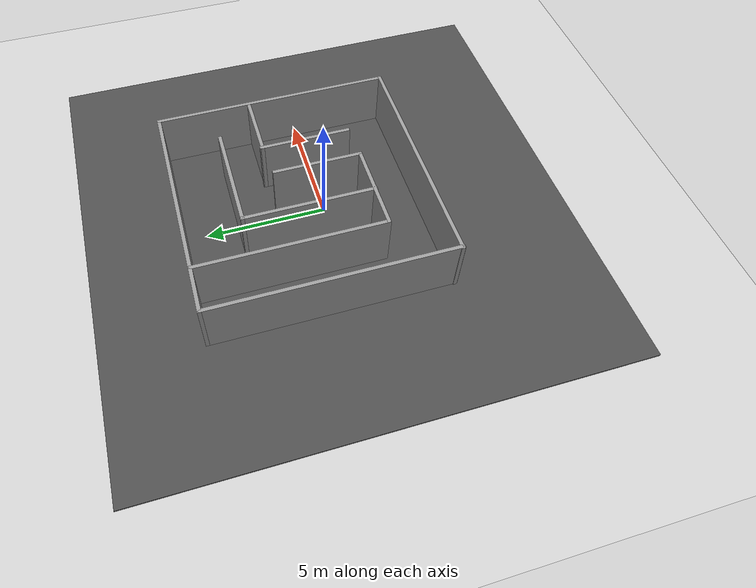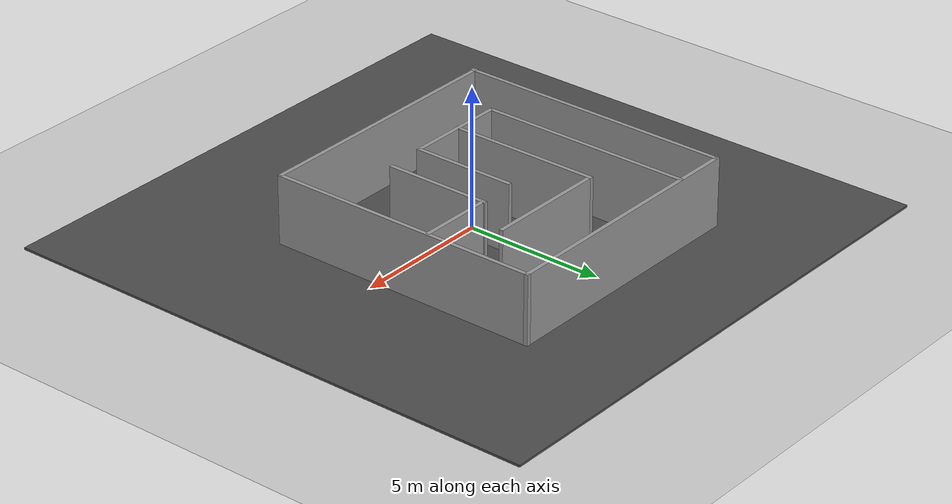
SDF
<sdf version="1.6">
 <world name="default">
  <light name="sun" type="directional">
   <pose>0 0 10 0 -0 0</pose>
   <diffuse>0.8 0.8 0.8 1</diffuse>
   <specular>0.2 0.2 0.2 1</specular>
   <attenuation>
    <range>1000</range>
    <constant>0.9</constant>
    <linear>0.01</linear>
    <quadratic>0.001</quadratic>
   </attenuation>
   <direction>-0.5 0.1 -0.9</direction>
  </light>
  <model name="ground_plane">
   <static>1</static>
   <link name="link">
    <collision name="collision">
     <geometry><plane><normal>0 0 1</normal><size>100 100</size></plane></geometry>
     <surface>
      <contact><collide_bitmask>65535</collide_bitmask></contact>
      <friction><ode><mu>100</mu><mu2>50</mu2></ode></friction>
     </surface>
    </collision>
    <visual name="visual">
     <cast_shadows>0</cast_shadows>
     <geometry><plane><normal>0 0 1</normal><size>100 100</size></plane></geometry>
     <material>
      <script><uri>file://media/materials/scripts/gazebo.material</uri><name>Gazebo/Grey</name></script>
     </material>
    </visual>
   </link>
  </model>
  <gravity>0 0 -9.8</gravity>
  <magnetic_field>6e-06 2.3e-05 -4.2e-05</magnetic_field>
  <atmosphere type="adiabatic"/>
  <physics name="default_physics" default="0" type="ode">
   <max_step_size>0.001</max_step_size>
   <real_time_factor>1</real_time_factor>
   <real_time_update_rate>1000</real_time_update_rate>
  </physics>
  <scene><ambient>0.4 0.4 0.4 1</ambient><background>0.7 0.7 0.7 1</background><shadows>1</shadows></scene>
  <audio><device>default</device></audio>
  <spherical_coordinates>
   <surface_model>EARTH_WGS84</surface_model>
   <latitude_deg>0</latitude_deg>
   <longitude_deg>0</longitude_deg>
   <elevation>0</elevation>
   <heading_deg>0</heading_deg>
  </spherical_coordinates>
  <model name="asphalt_plane">
   <static>1</static>
   <link name="link">
    <collision name="collision"><geometry><box><size>20 20 0.1</size></box></geometry></collision>
    <visual name="visual">
     <cast_shadows>0</cast_shadows>
     <geometry><box><size>20 20 0.1</size></box></geometry>
     <material>
      <script>
       <uri>model://asphalt_plane/materials/scripts</uri>
       <uri>model://asphalt_plane/materials/textures</uri>
       <name>vrc/asphalt</name>
      </script>
     </material>
    </visual>
   </link>
   <pose>0.009465 -0.064705 0 0 -0 0</pose>
  </model>
  <model name="nick">
   <pose>-0.15 0.97751 0 0 -0 0</pose>
   <link name="Wall_10">
    <collision name="Wall_10_Collision">
     <geometry><box><size>10 0.15 2.5</size></box></geometry>
     <pose>0 0 1.25 0 -0 0</pose>
    </collision>
    <visual name="Wall_10_Visual">
     <pose>0 0 1.25 0 -0 0</pose>
     <geometry><box><size>10 0.15 2.5</size></box></geometry>
     <material>
      <script><uri>file://media/materials/scripts/gazebo.material</uri><name>Gazebo/Grey</name></script>
      <ambient>1 1 1 1</ambient>
     </material>
     <meta><layer>0</layer></meta>
    </visual>
    <pose>-4.76502 -0.01749 0 0 -0 -1.5708</pose>
   </link>
   <link name="Wall_12">
    <collision name="Wall_12_Collision">
     <geometry><box><size>7.75 0.15 2.5</size></box></geometry>
     <pose>0 0 1.25 0 -0 0</pose>
    </collision>
    <visual name="Wall_12_Visual">
     <pose>0 0 1.25 0 -0 0</pose>
     <geometry><box><size>7.75 0.15 2.5</size></box></geometry>
     <material>
      <script><uri>file://media/materials/scripts/gazebo.material</uri><name>Gazebo/Grey</name></script>
      <ambient>1 1 1 1</ambient>
     </material>
     <meta><layer>0</layer></meta>
    </visual>
    <pose>-2.8976 1.1185 0 0 -0 -1.5708</pose>
   </link>
   <link name="Wall_13">
    <collision name="Wall_13_Collision">
     <geometry><box><size>3.75 0.15 2.5</size></box></geometry>
     <pose>0 0 1.25 0 -0 0</pose>
    </collision>
    <visual name="Wall_13_Visual">
     <pose>0 0 1.25 0 -0 0</pose>
     <geometry><box><size>3.75 0.15 2.5</size></box></geometry>
     <material>
      <script><uri>file://media/materials/scripts/gazebo.material</uri><name>Gazebo/Grey</name></script>
      <ambient>1 1 1 1</ambient>
     </material>
     <meta><layer>0</layer></meta>
    </visual>
    <pose>-1.0976 -2.6815 0 0 -0 0</pose>
   </link>
   <link name="Wall_14">
    <collision name="Wall_14_Collision">
     <geometry><box><size>3.75 0.15 2.5</size></box></geometry>
     <pose>0 0 1.25 0 -0 0</pose>
    </collision>
    <visual name="Wall_14_Visual">
     <pose>0 0 1.25 0 -0 0</pose>
     <geometry><box><size>3.75 0.15 2.5</size></box></geometry>
     <material>
      <script><uri>file://media/materials/scripts/gazebo.material</uri><name>Gazebo/Grey</name></script>
      <ambient>1 1 1 1</ambient>
     </material>
     <meta><layer>0</layer></meta>
    </visual>
    <pose>0.702404 -0.881499 0 0 -0 1.5708</pose>
   </link>
   <link name="Wall_18">
    <collision name="Wall_18_Collision">
     <geometry><box><size>5.5 0.15 2.5</size></box></geometry>
     <pose>0 0 1.25 0 -0 0</pose>
    </collision>
    <visual name="Wall_18_Visual">
     <pose>0 0 1.25 0 -0 0</pose>
     <geometry><box><size>5.5 0.15 2.5</size></box></geometry>
     <material>
      <script><uri>file://media/materials/scripts/gazebo.material</uri><name>Gazebo/Grey</name></script>
      <ambient>1 1 1 1</ambient>
     </material>
     <meta><layer>0</layer></meta>
    </visual>
    <pose>-1.21855 -0.030207 0 0 -0 -1.5708</pose>
   </link>
   <link name="Wall_2">
    <collision name="Wall_2_Collision">
     <geometry><box><size>9.75 0.15 2.5</size></box></geometry>
     <pose>0 0 1.25 0 -0 0</pose>
    </collision>
    <visual name="Wall_2_Visual">
     <pose>0 0 1.25 0 -0 0</pose>
     <geometry><box><size>9.75 0.15 2.5</size></box></geometry>
     <material>
      <script><uri>file://media/materials/scripts/gazebo.material</uri><name>Gazebo/Grey</name></script>
      <ambient>1 1 1 1</ambient>
     </material>
     <meta><layer>0</layer></meta>
    </visual>
    <pose>-0 -4.90751 0 0 -0 0</pose>
   </link>
   <link name="Wall_20">
    <collision name="Wall_20_Collision">
     <geometry><box><size>2.75 0.15 2.5</size></box></geometry>
     <pose>0 0 1.25 0 -0 0</pose>
    </collision>
    <visual name="Wall_20_Visual">
     <pose>0 0 1.25 0 -0 0</pose>
     <geometry><box><size>2.75 0.15 2.5</size></box></geometry>
     <material>
      <script><uri>file://media/materials/scripts/gazebo.material</uri><name>Gazebo/Grey</name></script>
      <ambient>1 1 1 1</ambient>
     </material>
     <meta><layer>0</layer></meta>
    </visual>
    <pose>3.42807 1.07069 0 0 -0 3.14159</pose>
   </link>
   <link name="Wall_21">
    <collision name="Wall_21_Collision">
     <geometry><box><size>3.84466 0.15 2.5</size></box></geometry>
     <pose>0 0 1.25 0 -0 0</pose>
    </collision>
    <visual name="Wall_21_Visual">
     <pose>0 0 1.25 0 -0 0</pose>
     <geometry><box><size>3.84466 0.15 2.5</size></box></geometry>
     <material>
      <script><uri>file://media/materials/scripts/gazebo.material</uri><name>Gazebo/Grey</name></script>
      <ambient>1 1 1 1</ambient>
     </material>
     <meta><layer>0</layer></meta>
    </visual>
    <pose>2.12807 -0.741664 0 0 -0 -1.5708</pose>
   </link>
   <link name="Wall_23">
    <collision name="Wall_23_Collision">
     <geometry><box><size>4.5 0.15 2.5</size></box></geometry>
     <pose>0 0 1.25 0 -0 0</pose>
    </collision>
    <visual name="Wall_23_Visual">
     <pose>0 0 1.25 0 -0 0</pose>
     <geometry><box><size>4.5 0.15 2.5</size></box></geometry>
     <material>
      <script><uri>file://media/materials/scripts/gazebo.material</uri><name>Gazebo/Grey</name></script>
      <ambient>1 1 1 1</ambient>
     </material>
     <meta><layer>0</layer></meta>
    </visual>
    <pose>0.95645 2.64479 0 0 -0 0</pose>
   </link>
   <link name="Wall_8">
    <collision name="Wall_8_Collision">
     <geometry><box><size>10 0.15 2.5</size></box></geometry>
     <pose>0 0 1.25 0 -0 0</pose>
    </collision>
    <visual name="Wall_8_Visual">
     <pose>0 0 1.25 0 -0 0</pose>
     <geometry><box><size>10 0.15 2.5</size></box></geometry>
     <material>
      <script><uri>file://media/materials/scripts/gazebo.material</uri><name>Gazebo/Grey</name></script>
      <ambient>1 1 1 1</ambient>
     </material>
     <meta><layer>0</layer></meta>
    </visual>
    <pose>4.8 0.01749 0 0 -0 1.5708</pose>
   </link>
   <link name="Wall_9">
    <collision name="Wall_9_Collision">
     <geometry><box><size>9.71502 0.15 2.5</size></box></geometry>
     <pose>0 0 1.25 0 -0 0</pose>
    </collision>
    <visual name="Wall_9_Visual">
     <pose>0 0 1.25 0 -0 0</pose>
     <geometry><box><size>9.71502 0.15 2.5</size></box></geometry>
     <material>
      <script><uri>file://media/materials/scripts/gazebo.material</uri><name>Gazebo/Grey</name></script>
      <ambient>1 1 1 1</ambient>
     </material>
     <meta><layer>0</layer></meta>
    </visual>
    <pose>0.01749 4.94249 0 0 -0 3.14159</pose>
   </link>
   <static>1</static>
  </model>
 </world>
</sdf>
